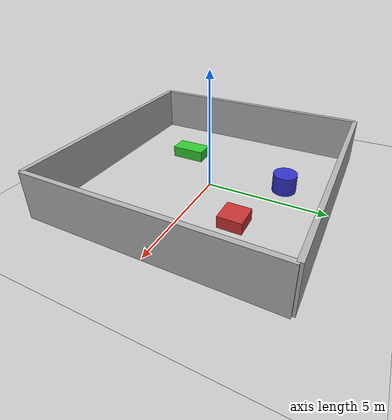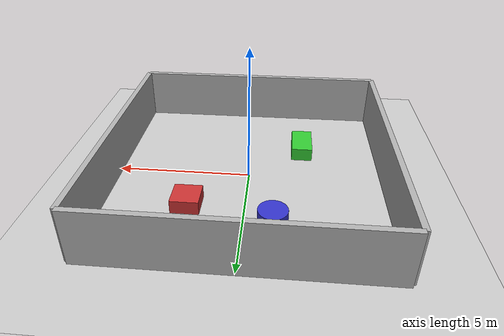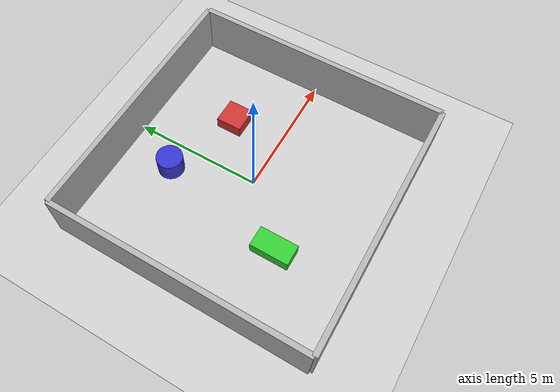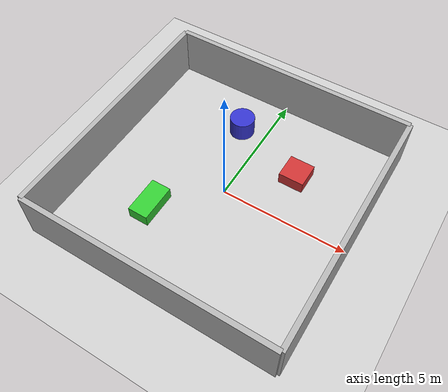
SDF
<?xml version="1.0"?>
<sdf version="1.6">
  <world name="turtlebot3_world">

    <!-- Physics -->
    <physics type="ode">
      <real_time_update_rate>1000.0</real_time_update_rate>
      <max_step_size>0.001</max_step_size>
      <real_time_factor>1</real_time_factor>
    </physics>

    <!-- A global light source -->
    <include>
      <uri>model://sun</uri>
    </include>

    <!-- Ground Plane -->
    <include>
      <uri>model://ground_plane</uri>
    </include>

    <!-- Walls forming a rectangular room (10x10m) -->
    <!-- North Wall -->
    <model name="wall_north">
      <static>true</static>
      <link name="link">
        <collision name="collision">
          <geometry>
            <box>
              <size>10 0.2 2.0</size>
            </box>
          </geometry>
        </collision>
        <visual name="visual">
          <geometry>
            <box>
              <size>10 0.2 2.0</size>
            </box>
          </geometry>
          <material>
            <ambient>0.7 0.7 0.7 1</ambient>
            <diffuse>0.7 0.7 0.7 1</diffuse>
          </material>
        </visual>
      </link>
      <pose>0 5 1 0 0 0</pose>
    </model>

    <!-- South Wall -->
    <model name="wall_south">
      <static>true</static>
      <link name="link">
        <collision name="collision">
          <geometry>
            <box>
              <size>10 0.2 2.0</size>
            </box>
          </geometry>
        </collision>
        <visual name="visual">
          <geometry>
            <box>
              <size>10 0.2 2.0</size>
            </box>
          </geometry>
          <material>
            <ambient>0.7 0.7 0.7 1</ambient>
            <diffuse>0.7 0.7 0.7 1</diffuse>
          </material>
        </visual>
      </link>
      <pose>0 -5 1 0 0 0</pose>
    </model>

    <!-- East Wall -->
    <model name="wall_east">
      <static>true</static>
      <link name="link">
        <collision name="collision">
          <geometry>
            <box>
              <size>0.2 10 2.0</size>
            </box>
          </geometry>
        </collision>
        <visual name="visual">
          <geometry>
            <box>
              <size>0.2 10 2.0</size>
            </box>
          </geometry>
          <material>
            <ambient>0.7 0.7 0.7 1</ambient>
            <diffuse>0.7 0.7 0.7 1</diffuse>
          </material>
        </visual>
      </link>
      <pose>5 0 1 0 0 0</pose>
    </model>

    <!-- West Wall -->
    <model name="wall_west">
      <static>true</static>
      <link name="link">
        <collision name="collision">
          <geometry>
            <box>
              <size>0.2 10 2.0</size>
            </box>
          </geometry>
        </collision>
        <visual name="visual">
          <geometry>
            <box>
              <size>0.2 10 2.0</size>
            </box>
          </geometry>
          <material>
            <ambient>0.7 0.7 0.7 1</ambient>
            <diffuse>0.7 0.7 0.7 1</diffuse>
          </material>
        </visual>
      </link>
      <pose>-5 0 1 0 0 0</pose>
    </model>

    <!-- Obstacle 1 - Box -->
    <model name="obstacle_1">
      <static>true</static>
      <link name="link">
        <collision name="collision">
          <geometry>
            <box>
              <size>1.0 1.0 0.5</size>
            </box>
          </geometry>
        </collision>
        <visual name="visual">
          <geometry>
            <box>
              <size>1.0 1.0 0.5</size>
            </box>
          </geometry>
          <material>
            <ambient>0.8 0.2 0.2 1</ambient>
            <diffuse>0.8 0.2 0.2 1</diffuse>
          </material>
        </visual>
      </link>
      <pose>2 2 0.25 0 0 0</pose>
    </model>

    <!-- Obstacle 2 - Box -->
    <model name="obstacle_2">
      <static>true</static>
      <link name="link">
        <collision name="collision">
          <geometry>
            <box>
              <size>0.8 1.5 0.5</size>
            </box>
          </geometry>
        </collision>
        <visual name="visual">
          <geometry>
            <box>
              <size>0.8 1.5 0.5</size>
            </box>
          </geometry>
          <material>
            <ambient>0.2 0.8 0.2 1</ambient>
            <diffuse>0.2 0.8 0.2 1</diffuse>
          </material>
        </visual>
      </link>
      <pose>-2 -2 0.25 0 0 0</pose>
    </model>

    <!-- Obstacle 3 - Cylinder -->
    <model name="obstacle_3">
      <static>true</static>
      <link name="link">
        <collision name="collision">
          <geometry>
            <cylinder>
              <radius>0.5</radius>
              <length>0.8</length>
            </cylinder>
          </geometry>
        </collision>
        <visual name="visual">
          <geometry>
            <cylinder>
              <radius>0.5</radius>
              <length>0.8</length>
            </cylinder>
          </geometry>
          <material>
            <ambient>0.2 0.2 0.8 1</ambient>
            <diffuse>0.2 0.2 0.8 1</diffuse>
          </material>
        </visual>
      </link>
      <pose>-1 3 0.4 0 0 0</pose>
    </model>

  </world>
</sdf>
